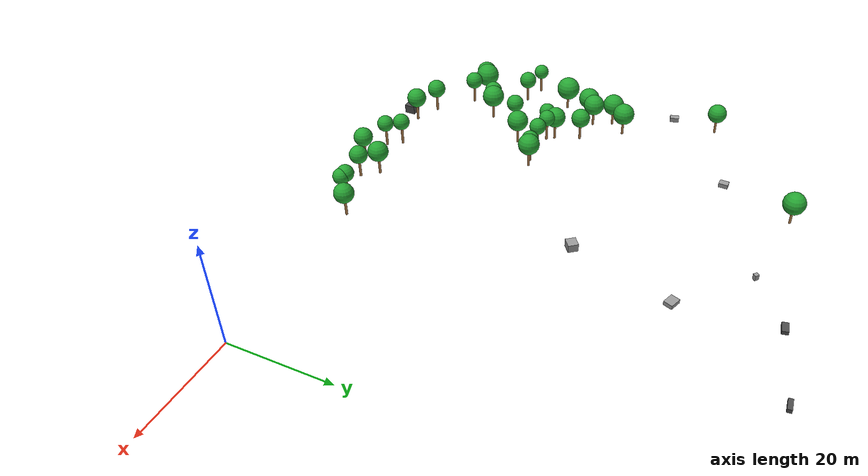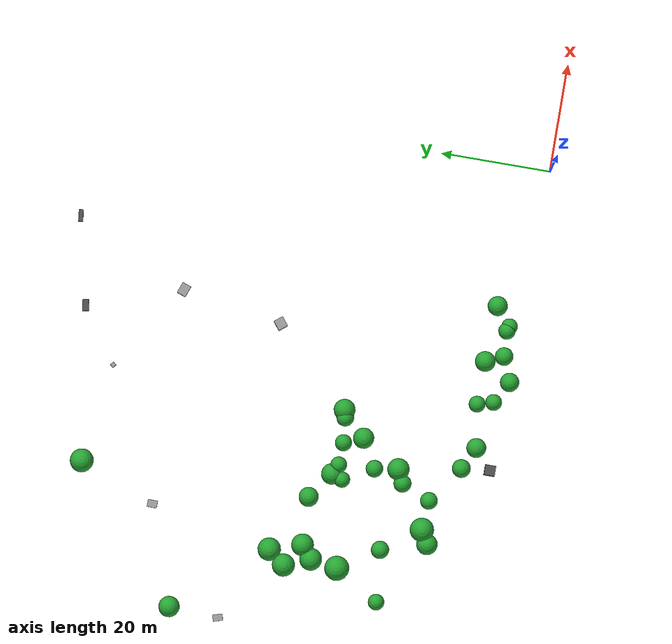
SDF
<sdf version="1.6">
 <world name="outdoor_v2">
  <include><uri>model://sun</uri></include>
  <model name="tree_0">
   <static>true</static>
   <pose>-63.44 11.86 11.67 0 0 4.497</pose>
   <link name="link">
    <collision name="trunk_c">
     <pose>0 0 1.5 0 0 0</pose>
     <geometry><cylinder><radius>0.22</radius><length>3.0</length></cylinder></geometry>
    </collision>
    <visual name="trunk_v">
     <pose>0 0 1.5 0 0 0</pose>
     <geometry><cylinder><radius>0.22</radius><length>3.0</length></cylinder></geometry>
     <material>
      <script><uri>file://media/materials/scripts/gazebo.material</uri><name>Gazebo/Wood</name></script>
     </material>
    </visual>
    <collision name="canopy_c">
     <pose>0 0 4.5 0 0 0</pose>
     <geometry><sphere><radius>1.52</radius></sphere></geometry>
    </collision>
    <visual name="canopy_v">
     <pose>0 0 4.5 0 0 0</pose>
     <geometry><sphere><radius>1.52</radius></sphere></geometry>
     <material>
      <script><uri>file://media/materials/scripts/gazebo.material</uri><name>Gazebo/Green</name></script>
     </material>
    </visual>
   </link>
  </model>
  <model name="tree_1">
   <static>true</static>
   <pose>-58.97 18.04 12.28 0 0 0.898</pose>
   <link name="link">
    <collision name="trunk_c">
     <pose>0 0 1.5 0 0 0</pose>
     <geometry><cylinder><radius>0.22</radius><length>3.0</length></cylinder></geometry>
    </collision>
    <visual name="trunk_v">
     <pose>0 0 1.5 0 0 0</pose>
     <geometry><cylinder><radius>0.22</radius><length>3.0</length></cylinder></geometry>
     <material>
      <script><uri>file://media/materials/scripts/gazebo.material</uri><name>Gazebo/Wood</name></script>
     </material>
    </visual>
    <collision name="canopy_c">
     <pose>0 0 4.5 0 0 0</pose>
     <geometry><sphere><radius>1.93</radius></sphere></geometry>
    </collision>
    <visual name="canopy_v">
     <pose>0 0 4.5 0 0 0</pose>
     <geometry><sphere><radius>1.93</radius></sphere></geometry>
     <material>
      <script><uri>file://media/materials/scripts/gazebo.material</uri><name>Gazebo/Green</name></script>
     </material>
    </visual>
   </link>
  </model>
  <model name="tree_2">
   <static>true</static>
   <pose>-68.59 12.17 10.27 0 0 6.076</pose>
   <link name="link">
    <collision name="trunk_c">
     <pose>0 0 1.5 0 0 0</pose>
     <geometry><cylinder><radius>0.22</radius><length>3.0</length></cylinder></geometry>
    </collision>
    <visual name="trunk_v">
     <pose>0 0 1.5 0 0 0</pose>
     <geometry><cylinder><radius>0.22</radius><length>3.0</length></cylinder></geometry>
     <material>
      <script><uri>file://media/materials/scripts/gazebo.material</uri><name>Gazebo/Wood</name></script>
     </material>
    </visual>
    <collision name="canopy_c">
     <pose>0 0 4.5 0 0 0</pose>
     <geometry><sphere><radius>2.11</radius></sphere></geometry>
    </collision>
    <visual name="canopy_v">
     <pose>0 0 4.5 0 0 0</pose>
     <geometry><sphere><radius>2.11</radius></sphere></geometry>
     <material>
      <script><uri>file://media/materials/scripts/gazebo.material</uri><name>Gazebo/Green</name></script>
     </material>
    </visual>
   </link>
  </model>
  <model name="tree_3">
   <static>true</static>
   <pose>-73.22 18.77 8.25 0 0 5.982</pose>
   <link name="link">
    <collision name="trunk_c">
     <pose>0 0 1.5 0 0 0</pose>
     <geometry><cylinder><radius>0.22</radius><length>3.0</length></cylinder></geometry>
    </collision>
    <visual name="trunk_v">
     <pose>0 0 1.5 0 0 0</pose>
     <geometry><cylinder><radius>0.22</radius><length>3.0</length></cylinder></geometry>
     <material>
      <script><uri>file://media/materials/scripts/gazebo.material</uri><name>Gazebo/Wood</name></script>
     </material>
    </visual>
    <collision name="canopy_c">
     <pose>0 0 4.5 0 0 0</pose>
     <geometry><sphere><radius>1.58</radius></sphere></geometry>
    </collision>
    <visual name="canopy_v">
     <pose>0 0 4.5 0 0 0</pose>
     <geometry><sphere><radius>1.58</radius></sphere></geometry>
     <material>
      <script><uri>file://media/materials/scripts/gazebo.material</uri><name>Gazebo/Green</name></script>
     </material>
    </visual>
   </link>
  </model>
  <model name="tree_4">
   <static>true</static>
   <pose>-52.91 5.26 11.94 0 0 3.060</pose>
   <link name="link">
    <collision name="trunk_c">
     <pose>0 0 1.5 0 0 0</pose>
     <geometry><cylinder><radius>0.22</radius><length>3.0</length></cylinder></geometry>
    </collision>
    <visual name="trunk_v">
     <pose>0 0 1.5 0 0 0</pose>
     <geometry><cylinder><radius>0.22</radius><length>3.0</length></cylinder></geometry>
     <material>
      <script><uri>file://media/materials/scripts/gazebo.material</uri><name>Gazebo/Wood</name></script>
     </material>
    </visual>
    <collision name="canopy_c">
     <pose>0 0 4.5 0 0 0</pose>
     <geometry><sphere><radius>1.72</radius></sphere></geometry>
    </collision>
    <visual name="canopy_v">
     <pose>0 0 4.5 0 0 0</pose>
     <geometry><sphere><radius>1.72</radius></sphere></geometry>
     <material>
      <script><uri>file://media/materials/scripts/gazebo.material</uri><name>Gazebo/Green</name></script>
     </material>
    </visual>
   </link>
  </model>
  <model name="tree_5">
   <static>true</static>
   <pose>-77.63 25.70 5.73 0 0 5.228</pose>
   <link name="link">
    <collision name="trunk_c">
     <pose>0 0 1.5 0 0 0</pose>
     <geometry><cylinder><radius>0.22</radius><length>3.0</length></cylinder></geometry>
    </collision>
    <visual name="trunk_v">
     <pose>0 0 1.5 0 0 0</pose>
     <geometry><cylinder><radius>0.22</radius><length>3.0</length></cylinder></geometry>
     <material>
      <script><uri>file://media/materials/scripts/gazebo.material</uri><name>Gazebo/Wood</name></script>
     </material>
    </visual>
    <collision name="canopy_c">
     <pose>0 0 4.5 0 0 0</pose>
     <geometry><sphere><radius>2.19</radius></sphere></geometry>
    </collision>
    <visual name="canopy_v">
     <pose>0 0 4.5 0 0 0</pose>
     <geometry><sphere><radius>2.19</radius></sphere></geometry>
     <material>
      <script><uri>file://media/materials/scripts/gazebo.material</uri><name>Gazebo/Green</name></script>
     </material>
    </visual>
   </link>
  </model>
  <model name="tree_6">
   <static>true</static>
   <pose>-51.52 28.76 10.35 0 0 2.710</pose>
   <link name="link">
    <collision name="trunk_c">
     <pose>0 0 1.5 0 0 0</pose>
     <geometry><cylinder><radius>0.22</radius><length>3.0</length></cylinder></geometry>
    </collision>
    <visual name="trunk_v">
     <pose>0 0 1.5 0 0 0</pose>
     <geometry><cylinder><radius>0.22</radius><length>3.0</length></cylinder></geometry>
     <material>
      <script><uri>file://media/materials/scripts/gazebo.material</uri><name>Gazebo/Wood</name></script>
     </material>
    </visual>
    <collision name="canopy_c">
     <pose>0 0 4.5 0 0 0</pose>
     <geometry><sphere><radius>1.53</radius></sphere></geometry>
    </collision>
    <visual name="canopy_v">
     <pose>0 0 4.5 0 0 0</pose>
     <geometry><sphere><radius>1.53</radius></sphere></geometry>
     <material>
      <script><uri>file://media/materials/scripts/gazebo.material</uri><name>Gazebo/Green</name></script>
     </material>
    </visual>
   </link>
  </model>
  <model name="tree_8">
   <static>true</static>
   <pose>-61.29 16.92 11.99 0 0 2.000</pose>
   <link name="link">
    <collision name="trunk_c">
     <pose>0 0 1.5 0 0 0</pose>
     <geometry><cylinder><radius>0.22</radius><length>3.0</length></cylinder></geometry>
    </collision>
    <visual name="trunk_v">
     <pose>0 0 1.5 0 0 0</pose>
     <geometry><cylinder><radius>0.22</radius><length>3.0</length></cylinder></geometry>
     <material>
      <script><uri>file://media/materials/scripts/gazebo.material</uri><name>Gazebo/Wood</name></script>
     </material>
    </visual>
    <collision name="canopy_c">
     <pose>0 0 4.5 0 0 0</pose>
     <geometry><sphere><radius>1.56</radius></sphere></geometry>
    </collision>
    <visual name="canopy_v">
     <pose>0 0 4.5 0 0 0</pose>
     <geometry><sphere><radius>1.56</radius></sphere></geometry>
     <material>
      <script><uri>file://media/materials/scripts/gazebo.material</uri><name>Gazebo/Green</name></script>
     </material>
    </visual>
   </link>
  </model>
  <model name="tree_9">
   <static>true</static>
   <pose>-74.59 32.35 5.31 0 0 0.122</pose>
   <link name="link">
    <collision name="trunk_c">
     <pose>0 0 1.5 0 0 0</pose>
     <geometry><cylinder><radius>0.22</radius><length>3.0</length></cylinder></geometry>
    </collision>
    <visual name="trunk_v">
     <pose>0 0 1.5 0 0 0</pose>
     <geometry><cylinder><radius>0.22</radius><length>3.0</length></cylinder></geometry>
     <material>
      <script><uri>file://media/materials/scripts/gazebo.material</uri><name>Gazebo/Wood</name></script>
     </material>
    </visual>
    <collision name="canopy_c">
     <pose>0 0 4.5 0 0 0</pose>
     <geometry><sphere><radius>1.98</radius></sphere></geometry>
    </collision>
    <visual name="canopy_v">
     <pose>0 0 4.5 0 0 0</pose>
     <geometry><sphere><radius>1.98</radius></sphere></geometry>
     <material>
      <script><uri>file://media/materials/scripts/gazebo.material</uri><name>Gazebo/Green</name></script>
     </material>
    </visual>
   </link>
  </model>
  <model name="tree_10">
   <static>true</static>
   <pose>-54.59 24.97 11.36 0 0 2.766</pose>
   <link name="link">
    <collision name="trunk_c">
     <pose>0 0 1.5 0 0 0</pose>
     <geometry><cylinder><radius>0.22</radius><length>3.0</length></cylinder></geometry>
    </collision>
    <visual name="trunk_v">
     <pose>0 0 1.5 0 0 0</pose>
     <geometry><cylinder><radius>0.22</radius><length>3.0</length></cylinder></geometry>
     <material>
      <script><uri>file://media/materials/scripts/gazebo.material</uri><name>Gazebo/Wood</name></script>
     </material>
    </visual>
    <collision name="canopy_c">
     <pose>0 0 4.5 0 0 0</pose>
     <geometry><sphere><radius>1.84</radius></sphere></geometry>
    </collision>
    <visual name="canopy_v">
     <pose>0 0 4.5 0 0 0</pose>
     <geometry><sphere><radius>1.84</radius></sphere></geometry>
     <material>
      <script><uri>file://media/materials/scripts/gazebo.material</uri><name>Gazebo/Green</name></script>
     </material>
    </visual>
   </link>
  </model>
  <model name="tree_11">
   <static>true</static>
   <pose>-62.30 27.46 9.66 0 0 2.082</pose>
   <link name="link">
    <collision name="trunk_c">
     <pose>0 0 1.5 0 0 0</pose>
     <geometry><cylinder><radius>0.22</radius><length>3.0</length></cylinder></geometry>
    </collision>
    <visual name="trunk_v">
     <pose>0 0 1.5 0 0 0</pose>
     <geometry><cylinder><radius>0.22</radius><length>3.0</length></cylinder></geometry>
     <material>
      <script><uri>file://media/materials/scripts/gazebo.material</uri><name>Gazebo/Wood</name></script>
     </material>
    </visual>
    <collision name="canopy_c">
     <pose>0 0 4.5 0 0 0</pose>
     <geometry><sphere><radius>1.41</radius></sphere></geometry>
    </collision>
    <visual name="canopy_v">
     <pose>0 0 4.5 0 0 0</pose>
     <geometry><sphere><radius>1.41</radius></sphere></geometry>
     <material>
      <script><uri>file://media/materials/scripts/gazebo.material</uri><name>Gazebo/Green</name></script>
     </material>
    </visual>
   </link>
  </model>
  <model name="tree_12">
   <static>true</static>
   <pose>-50.16 29.12 10.23 0 0 3.217</pose>
   <link name="link">
    <collision name="trunk_c">
     <pose>0 0 1.5 0 0 0</pose>
     <geometry><cylinder><radius>0.22</radius><length>3.0</length></cylinder></geometry>
    </collision>
    <visual name="trunk_v">
     <pose>0 0 1.5 0 0 0</pose>
     <geometry><cylinder><radius>0.22</radius><length>3.0</length></cylinder></geometry>
     <material>
      <script><uri>file://media/materials/scripts/gazebo.material</uri><name>Gazebo/Wood</name></script>
     </material>
    </visual>
    <collision name="canopy_c">
     <pose>0 0 4.5 0 0 0</pose>
     <geometry><sphere><radius>1.90</radius></sphere></geometry>
    </collision>
    <visual name="canopy_v">
     <pose>0 0 4.5 0 0 0</pose>
     <geometry><sphere><radius>1.90</radius></sphere></geometry>
     <material>
      <script><uri>file://media/materials/scripts/gazebo.material</uri><name>Gazebo/Green</name></script>
     </material>
    </visual>
   </link>
  </model>
  <model name="tree_13">
   <static>true</static>
   <pose>-59.84 28.48 9.79 0 0 6.186</pose>
   <link name="link">
    <collision name="trunk_c">
     <pose>0 0 1.5 0 0 0</pose>
     <geometry><cylinder><radius>0.22</radius><length>3.0</length></cylinder></geometry>
    </collision>
    <visual name="trunk_v">
     <pose>0 0 1.5 0 0 0</pose>
     <geometry><cylinder><radius>0.22</radius><length>3.0</length></cylinder></geometry>
     <material>
      <script><uri>file://media/materials/scripts/gazebo.material</uri><name>Gazebo/Wood</name></script>
     </material>
    </visual>
    <collision name="canopy_c">
     <pose>0 0 4.5 0 0 0</pose>
     <geometry><sphere><radius>1.45</radius></sphere></geometry>
    </collision>
    <visual name="canopy_v">
     <pose>0 0 4.5 0 0 0</pose>
     <geometry><sphere><radius>1.45</radius></sphere></geometry>
     <material>
      <script><uri>file://media/materials/scripts/gazebo.material</uri><name>Gazebo/Green</name></script>
     </material>
    </visual>
   </link>
  </model>
  <model name="tree_14">
   <static>true</static>
   <pose>-78.63 35.09 3.80 0 0 6.102</pose>
   <link name="link">
    <collision name="trunk_c">
     <pose>0 0 1.5 0 0 0</pose>
     <geometry><cylinder><radius>0.22</radius><length>3.0</length></cylinder></geometry>
    </collision>
    <visual name="trunk_v">
     <pose>0 0 1.5 0 0 0</pose>
     <geometry><cylinder><radius>0.22</radius><length>3.0</length></cylinder></geometry>
     <material>
      <script><uri>file://media/materials/scripts/gazebo.material</uri><name>Gazebo/Wood</name></script>
     </material>
    </visual>
    <collision name="canopy_c">
     <pose>0 0 4.5 0 0 0</pose>
     <geometry><sphere><radius>2.03</radius></sphere></geometry>
    </collision>
    <visual name="canopy_v">
     <pose>0 0 4.5 0 0 0</pose>
     <geometry><sphere><radius>2.03</radius></sphere></geometry>
     <material>
      <script><uri>file://media/materials/scripts/gazebo.material</uri><name>Gazebo/Green</name></script>
     </material>
    </visual>
   </link>
  </model>
  <model name="tree_15">
   <static>true</static>
   <pose>-55.92 28.32 10.30 0 0 1.668</pose>
   <link name="link">
    <collision name="trunk_c">
     <pose>0 0 1.5 0 0 0</pose>
     <geometry><cylinder><radius>0.22</radius><length>3.0</length></cylinder></geometry>
    </collision>
    <visual name="trunk_v">
     <pose>0 0 1.5 0 0 0</pose>
     <geometry><cylinder><radius>0.22</radius><length>3.0</length></cylinder></geometry>
     <material>
      <script><uri>file://media/materials/scripts/gazebo.material</uri><name>Gazebo/Wood</name></script>
     </material>
    </visual>
    <collision name="canopy_c">
     <pose>0 0 4.5 0 0 0</pose>
     <geometry><sphere><radius>1.48</radius></sphere></geometry>
    </collision>
    <visual name="canopy_v">
     <pose>0 0 4.5 0 0 0</pose>
     <geometry><sphere><radius>1.48</radius></sphere></geometry>
     <material>
      <script><uri>file://media/materials/scripts/gazebo.material</uri><name>Gazebo/Green</name></script>
     </material>
    </visual>
   </link>
  </model>
  <model name="tree_16">
   <static>true</static>
   <pose>-82.28 17.85 5.20 0 0 4.892</pose>
   <link name="link">
    <collision name="trunk_c">
     <pose>0 0 1.5 0 0 0</pose>
     <geometry><cylinder><radius>0.22</radius><length>3.0</length></cylinder></geometry>
    </collision>
    <visual name="trunk_v">
     <pose>0 0 1.5 0 0 0</pose>
     <geometry><cylinder><radius>0.22</radius><length>3.0</length></cylinder></geometry>
     <material>
      <script><uri>file://media/materials/scripts/gazebo.material</uri><name>Gazebo/Wood</name></script>
     </material>
    </visual>
    <collision name="canopy_c">
     <pose>0 0 4.5 0 0 0</pose>
     <geometry><sphere><radius>1.43</radius></sphere></geometry>
    </collision>
    <visual name="canopy_v">
     <pose>0 0 4.5 0 0 0</pose>
     <geometry><sphere><radius>1.43</radius></sphere></geometry>
     <material>
      <script><uri>file://media/materials/scripts/gazebo.material</uri><name>Gazebo/Green</name></script>
     </material>
    </visual>
   </link>
  </model>
  <model name="tree_17">
   <static>true</static>
   <pose>-56.93 7.25 12.20 0 0 0.814</pose>
   <link name="link">
    <collision name="trunk_c">
     <pose>0 0 1.5 0 0 0</pose>
     <geometry><cylinder><radius>0.22</radius><length>3.0</length></cylinder></geometry>
    </collision>
    <visual name="trunk_v">
     <pose>0 0 1.5 0 0 0</pose>
     <geometry><cylinder><radius>0.22</radius><length>3.0</length></cylinder></geometry>
     <material>
      <script><uri>file://media/materials/scripts/gazebo.material</uri><name>Gazebo/Wood</name></script>
     </material>
    </visual>
    <collision name="canopy_c">
     <pose>0 0 4.5 0 0 0</pose>
     <geometry><sphere><radius>1.62</radius></sphere></geometry>
    </collision>
    <visual name="canopy_v">
     <pose>0 0 4.5 0 0 0</pose>
     <geometry><sphere><radius>1.62</radius></sphere></geometry>
     <material>
      <script><uri>file://media/materials/scripts/gazebo.material</uri><name>Gazebo/Green</name></script>
     </material>
    </visual>
   </link>
  </model>
  <model name="tree_18">
   <static>true</static>
   <pose>-66.17 32.73 7.25 0 0 5.724</pose>
   <link name="link">
    <collision name="trunk_c">
     <pose>0 0 1.5 0 0 0</pose>
     <geometry><cylinder><radius>0.22</radius><length>3.0</length></cylinder></geometry>
    </collision>
    <visual name="trunk_v">
     <pose>0 0 1.5 0 0 0</pose>
     <geometry><cylinder><radius>0.22</radius><length>3.0</length></cylinder></geometry>
     <material>
      <script><uri>file://media/materials/scripts/gazebo.material</uri><name>Gazebo/Wood</name></script>
     </material>
    </visual>
    <collision name="canopy_c">
     <pose>0 0 4.5 0 0 0</pose>
     <geometry><sphere><radius>1.74</radius></sphere></geometry>
    </collision>
    <visual name="canopy_v">
     <pose>0 0 4.5 0 0 0</pose>
     <geometry><sphere><radius>1.74</radius></sphere></geometry>
     <material>
      <script><uri>file://media/materials/scripts/gazebo.material</uri><name>Gazebo/Green</name></script>
     </material>
    </visual>
   </link>
  </model>
  <model name="tree_19">
   <static>true</static>
   <pose>-76.31 38.04 3.72 0 0 1.624</pose>
   <link name="link">
    <collision name="trunk_c">
     <pose>0 0 1.5 0 0 0</pose>
     <geometry><cylinder><radius>0.22</radius><length>3.0</length></cylinder></geometry>
    </collision>
    <visual name="trunk_v">
     <pose>0 0 1.5 0 0 0</pose>
     <geometry><cylinder><radius>0.22</radius><length>3.0</length></cylinder></geometry>
     <material>
      <script><uri>file://media/materials/scripts/gazebo.material</uri><name>Gazebo/Wood</name></script>
     </material>
    </visual>
    <collision name="canopy_c">
     <pose>0 0 4.5 0 0 0</pose>
     <geometry><sphere><radius>2.06</radius></sphere></geometry>
    </collision>
    <visual name="canopy_v">
     <pose>0 0 4.5 0 0 0</pose>
     <geometry><sphere><radius>2.06</radius></sphere></geometry>
     <material>
      <script><uri>file://media/materials/scripts/gazebo.material</uri><name>Gazebo/Green</name></script>
     </material>
    </visual>
   </link>
  </model>
  <model name="tree_20">
   <static>true</static>
   <pose>-59.54 22.20 11.51 0 0 5.772</pose>
   <link name="link">
    <collision name="trunk_c">
     <pose>0 0 1.5 0 0 0</pose>
     <geometry><cylinder><radius>0.22</radius><length>3.0</length></cylinder></geometry>
    </collision>
    <visual name="trunk_v">
     <pose>0 0 1.5 0 0 0</pose>
     <geometry><cylinder><radius>0.22</radius><length>3.0</length></cylinder></geometry>
     <material>
      <script><uri>file://media/materials/scripts/gazebo.material</uri><name>Gazebo/Wood</name></script>
     </material>
    </visual>
    <collision name="canopy_c">
     <pose>0 0 4.5 0 0 0</pose>
     <geometry><sphere><radius>1.52</radius></sphere></geometry>
    </collision>
    <visual name="canopy_v">
     <pose>0 0 4.5 0 0 0</pose>
     <geometry><sphere><radius>1.52</radius></sphere></geometry>
     <material>
      <script><uri>file://media/materials/scripts/gazebo.material</uri><name>Gazebo/Green</name></script>
     </material>
    </visual>
   </link>
  </model>
  <model name="tree_21">
   <static>true</static>
   <pose>-61.59 29.40 9.21 0 0 4.399</pose>
   <link name="link">
    <collision name="trunk_c">
     <pose>0 0 1.5 0 0 0</pose>
     <geometry><cylinder><radius>0.22</radius><length>3.0</length></cylinder></geometry>
    </collision>
    <visual name="trunk_v">
     <pose>0 0 1.5 0 0 0</pose>
     <geometry><cylinder><radius>0.22</radius><length>3.0</length></cylinder></geometry>
     <material>
      <script><uri>file://media/materials/scripts/gazebo.material</uri><name>Gazebo/Wood</name></script>
     </material>
    </visual>
    <collision name="canopy_c">
     <pose>0 0 4.5 0 0 0</pose>
     <geometry><sphere><radius>1.86</radius></sphere></geometry>
    </collision>
    <visual name="canopy_v">
     <pose>0 0 4.5 0 0 0</pose>
     <geometry><sphere><radius>1.86</radius></sphere></geometry>
     <material>
      <script><uri>file://media/materials/scripts/gazebo.material</uri><name>Gazebo/Green</name></script>
     </material>
    </visual>
   </link>
  </model>
  <model name="tree_24">
   <static>true</static>
   <pose>-45.26 6.41 11.49 0 0 5.893</pose>
   <link name="link">
    <collision name="trunk_c">
     <pose>0 0 1.5 0 0 0</pose>
     <geometry><cylinder><radius>0.22</radius><length>3.0</length></cylinder></geometry>
    </collision>
    <visual name="trunk_v">
     <pose>0 0 1.5 0 0 0</pose>
     <geometry><cylinder><radius>0.22</radius><length>3.0</length></cylinder></geometry>
     <material>
      <script><uri>file://media/materials/scripts/gazebo.material</uri><name>Gazebo/Wood</name></script>
     </material>
    </visual>
    <collision name="canopy_c">
     <pose>0 0 4.5 0 0 0</pose>
     <geometry><sphere><radius>1.46</radius></sphere></geometry>
    </collision>
    <visual name="canopy_v">
     <pose>0 0 4.5 0 0 0</pose>
     <geometry><sphere><radius>1.46</radius></sphere></geometry>
     <material>
      <script><uri>file://media/materials/scripts/gazebo.material</uri><name>Gazebo/Green</name></script>
     </material>
    </visual>
   </link>
  </model>
  <model name="tree_27">
   <static>true</static>
   <pose>-44.42 3.58 10.86 0 0 5.418</pose>
   <link name="link">
    <collision name="trunk_c">
     <pose>0 0 1.5 0 0 0</pose>
     <geometry><cylinder><radius>0.22</radius><length>3.0</length></cylinder></geometry>
    </collision>
    <visual name="trunk_v">
     <pose>0 0 1.5 0 0 0</pose>
     <geometry><cylinder><radius>0.22</radius><length>3.0</length></cylinder></geometry>
     <material>
      <script><uri>file://media/materials/scripts/gazebo.material</uri><name>Gazebo/Wood</name></script>
     </material>
    </visual>
    <collision name="canopy_c">
     <pose>0 0 4.5 0 0 0</pose>
     <geometry><sphere><radius>1.45</radius></sphere></geometry>
    </collision>
    <visual name="canopy_v">
     <pose>0 0 4.5 0 0 0</pose>
     <geometry><sphere><radius>1.45</radius></sphere></geometry>
     <material>
      <script><uri>file://media/materials/scripts/gazebo.material</uri><name>Gazebo/Green</name></script>
     </material>
    </visual>
   </link>
  </model>
  <model name="tree_28">
   <static>true</static>
   <pose>-27.17 5.63 7.85 0 0 2.130</pose>
   <link name="link">
    <collision name="trunk_c">
     <pose>0 0 1.5 0 0 0</pose>
     <geometry><cylinder><radius>0.22</radius><length>3.0</length></cylinder></geometry>
    </collision>
    <visual name="trunk_v">
     <pose>0 0 1.5 0 0 0</pose>
     <geometry><cylinder><radius>0.22</radius><length>3.0</length></cylinder></geometry>
     <material>
      <script><uri>file://media/materials/scripts/gazebo.material</uri><name>Gazebo/Wood</name></script>
     </material>
    </visual>
    <collision name="canopy_c">
     <pose>0 0 4.5 0 0 0</pose>
     <geometry><sphere><radius>1.76</radius></sphere></geometry>
    </collision>
    <visual name="canopy_v">
     <pose>0 0 4.5 0 0 0</pose>
     <geometry><sphere><radius>1.76</radius></sphere></geometry>
     <material>
      <script><uri>file://media/materials/scripts/gazebo.material</uri><name>Gazebo/Green</name></script>
     </material>
    </visual>
   </link>
  </model>
  <model name="tree_30">
   <static>true</static>
   <pose>-35.96 3.07 9.32 0 0 0.812</pose>
   <link name="link">
    <collision name="trunk_c">
     <pose>0 0 1.5 0 0 0</pose>
     <geometry><cylinder><radius>0.22</radius><length>3.0</length></cylinder></geometry>
    </collision>
    <visual name="trunk_v">
     <pose>0 0 1.5 0 0 0</pose>
     <geometry><cylinder><radius>0.22</radius><length>3.0</length></cylinder></geometry>
     <material>
      <script><uri>file://media/materials/scripts/gazebo.material</uri><name>Gazebo/Wood</name></script>
     </material>
    </visual>
    <collision name="canopy_c">
     <pose>0 0 4.5 0 0 0</pose>
     <geometry><sphere><radius>1.61</radius></sphere></geometry>
    </collision>
    <visual name="canopy_v">
     <pose>0 0 4.5 0 0 0</pose>
     <geometry><sphere><radius>1.61</radius></sphere></geometry>
     <material>
      <script><uri>file://media/materials/scripts/gazebo.material</uri><name>Gazebo/Green</name></script>
     </material>
    </visual>
   </link>
  </model>
  <model name="tree_33">
   <static>true</static>
   <pose>-30.46 2.99 8.32 0 0 1.267</pose>
   <link name="link">
    <collision name="trunk_c">
     <pose>0 0 1.5 0 0 0</pose>
     <geometry><cylinder><radius>0.22</radius><length>3.0</length></cylinder></geometry>
    </collision>
    <visual name="trunk_v">
     <pose>0 0 1.5 0 0 0</pose>
     <geometry><cylinder><radius>0.22</radius><length>3.0</length></cylinder></geometry>
     <material>
      <script><uri>file://media/materials/scripts/gazebo.material</uri><name>Gazebo/Wood</name></script>
     </material>
    </visual>
    <collision name="canopy_c">
     <pose>0 0 4.5 0 0 0</pose>
     <geometry><sphere><radius>1.44</radius></sphere></geometry>
    </collision>
    <visual name="canopy_v">
     <pose>0 0 4.5 0 0 0</pose>
     <geometry><sphere><radius>1.44</radius></sphere></geometry>
     <material>
      <script><uri>file://media/materials/scripts/gazebo.material</uri><name>Gazebo/Green</name></script>
     </material>
    </visual>
   </link>
  </model>
  <model name="tree_36">
   <static>true</static>
   <pose>-37.45 6.21 9.98 0 0 1.117</pose>
   <link name="link">
    <collision name="trunk_c">
     <pose>0 0 1.5 0 0 0</pose>
     <geometry><cylinder><radius>0.22</radius><length>3.0</length></cylinder></geometry>
    </collision>
    <visual name="trunk_v">
     <pose>0 0 1.5 0 0 0</pose>
     <geometry><cylinder><radius>0.22</radius><length>3.0</length></cylinder></geometry>
     <material>
      <script><uri>file://media/materials/scripts/gazebo.material</uri><name>Gazebo/Wood</name></script>
     </material>
    </visual>
    <collision name="canopy_c">
     <pose>0 0 4.5 0 0 0</pose>
     <geometry><sphere><radius>1.80</radius></sphere></geometry>
    </collision>
    <visual name="canopy_v">
     <pose>0 0 4.5 0 0 0</pose>
     <geometry><sphere><radius>1.80</radius></sphere></geometry>
     <material>
      <script><uri>file://media/materials/scripts/gazebo.material</uri><name>Gazebo/Green</name></script>
     </material>
    </visual>
   </link>
  </model>
  <model name="tree_37">
   <static>true</static>
   <pose>-40.36 1.37 9.83 0 0 0.114</pose>
   <link name="link">
    <collision name="trunk_c">
     <pose>0 0 1.5 0 0 0</pose>
     <geometry><cylinder><radius>0.22</radius><length>3.0</length></cylinder></geometry>
    </collision>
    <visual name="trunk_v">
     <pose>0 0 1.5 0 0 0</pose>
     <geometry><cylinder><radius>0.22</radius><length>3.0</length></cylinder></geometry>
     <material>
      <script><uri>file://media/materials/scripts/gazebo.material</uri><name>Gazebo/Wood</name></script>
     </material>
    </visual>
    <collision name="canopy_c">
     <pose>0 0 4.5 0 0 0</pose>
     <geometry><sphere><radius>1.68</radius></sphere></geometry>
    </collision>
    <visual name="canopy_v">
     <pose>0 0 4.5 0 0 0</pose>
     <geometry><sphere><radius>1.68</radius></sphere></geometry>
     <material>
      <script><uri>file://media/materials/scripts/gazebo.material</uri><name>Gazebo/Green</name></script>
     </material>
    </visual>
   </link>
  </model>
  <model name="tree_75">
   <static>true</static>
   <pose>-66.41 73.80 0.39 0 0 3.940</pose>
   <link name="link">
    <collision name="trunk_c">
     <pose>0 0 1.5 0 0 0</pose>
     <geometry><cylinder><radius>0.22</radius><length>3.0</length></cylinder></geometry>
    </collision>
    <visual name="trunk_v">
     <pose>0 0 1.5 0 0 0</pose>
     <geometry><cylinder><radius>0.22</radius><length>3.0</length></cylinder></geometry>
     <material>
      <script><uri>file://media/materials/scripts/gazebo.material</uri><name>Gazebo/Wood</name></script>
     </material>
    </visual>
    <collision name="canopy_c">
     <pose>0 0 4.5 0 0 0</pose>
     <geometry><sphere><radius>2.11</radius></sphere></geometry>
    </collision>
    <visual name="canopy_v">
     <pose>0 0 4.5 0 0 0</pose>
     <geometry><sphere><radius>2.11</radius></sphere></geometry>
     <material>
      <script><uri>file://media/materials/scripts/gazebo.material</uri><name>Gazebo/Green</name></script>
     </material>
    </visual>
   </link>
  </model>
  <model name="tree_80">
   <static>true</static>
   <pose>-89.29 53.85 0.60 0 0 5.607</pose>
   <link name="link">
    <collision name="trunk_c">
     <pose>0 0 1.5 0 0 0</pose>
     <geometry><cylinder><radius>0.22</radius><length>3.0</length></cylinder></geometry>
    </collision>
    <visual name="trunk_v">
     <pose>0 0 1.5 0 0 0</pose>
     <geometry><cylinder><radius>0.22</radius><length>3.0</length></cylinder></geometry>
     <material>
      <script><uri>file://media/materials/scripts/gazebo.material</uri><name>Gazebo/Wood</name></script>
     </material>
    </visual>
    <collision name="canopy_c">
     <pose>0 0 4.5 0 0 0</pose>
     <geometry><sphere><radius>1.87</radius></sphere></geometry>
    </collision>
    <visual name="canopy_v">
     <pose>0 0 4.5 0 0 0</pose>
     <geometry><sphere><radius>1.87</radius></sphere></geometry>
     <material>
      <script><uri>file://media/materials/scripts/gazebo.material</uri><name>Gazebo/Green</name></script>
     </material>
    </visual>
   </link>
  </model>
  <model name="tree_83">
   <static>true</static>
   <pose>-31.32 3.30 8.49 0 0 2.265</pose>
   <link name="link">
    <collision name="trunk_c">
     <pose>0 0 1.5 0 0 0</pose>
     <geometry><cylinder><radius>0.22</radius><length>3.0</length></cylinder></geometry>
    </collision>
    <visual name="trunk_v">
     <pose>0 0 1.5 0 0 0</pose>
     <geometry><cylinder><radius>0.22</radius><length>3.0</length></cylinder></geometry>
     <material>
      <script><uri>file://media/materials/scripts/gazebo.material</uri><name>Gazebo/Wood</name></script>
     </material>
    </visual>
    <collision name="canopy_c">
     <pose>0 0 4.5 0 0 0</pose>
     <geometry><sphere><radius>1.51</radius></sphere></geometry>
    </collision>
    <visual name="canopy_v">
     <pose>0 0 4.5 0 0 0</pose>
     <geometry><sphere><radius>1.51</radius></sphere></geometry>
     <material>
      <script><uri>file://media/materials/scripts/gazebo.material</uri><name>Gazebo/Green</name></script>
     </material>
    </visual>
   </link>
  </model>
  <model name="tree_85">
   <static>true</static>
   <pose>-70.90 10.85 9.53 0 0 3.942</pose>
   <link name="link">
    <collision name="trunk_c">
     <pose>0 0 1.5 0 0 0</pose>
     <geometry><cylinder><radius>0.22</radius><length>3.0</length></cylinder></geometry>
    </collision>
    <visual name="trunk_v">
     <pose>0 0 1.5 0 0 0</pose>
     <geometry><cylinder><radius>0.22</radius><length>3.0</length></cylinder></geometry>
     <material>
      <script><uri>file://media/materials/scripts/gazebo.material</uri><name>Gazebo/Wood</name></script>
     </material>
    </visual>
    <collision name="canopy_c">
     <pose>0 0 4.5 0 0 0</pose>
     <geometry><sphere><radius>1.85</radius></sphere></geometry>
    </collision>
    <visual name="canopy_v">
     <pose>0 0 4.5 0 0 0</pose>
     <geometry><sphere><radius>1.85</radius></sphere></geometry>
     <material>
      <script><uri>file://media/materials/scripts/gazebo.material</uri><name>Gazebo/Green</name></script>
     </material>
    </visual>
   </link>
  </model>
  <model name="tree_100">
   <static>true</static>
   <pose>-76.84 30.50 5.10 0 0 1.912</pose>
   <link name="link">
    <collision name="trunk_c">
     <pose>0 0 1.5 0 0 0</pose>
     <geometry><cylinder><radius>0.22</radius><length>3.0</length></cylinder></geometry>
    </collision>
    <visual name="trunk_v">
     <pose>0 0 1.5 0 0 0</pose>
     <geometry><cylinder><radius>0.22</radius><length>3.0</length></cylinder></geometry>
     <material>
      <script><uri>file://media/materials/scripts/gazebo.material</uri><name>Gazebo/Wood</name></script>
     </material>
    </visual>
    <collision name="canopy_c">
     <pose>0 0 4.5 0 0 0</pose>
     <geometry><sphere><radius>1.99</radius></sphere></geometry>
    </collision>
    <visual name="canopy_v">
     <pose>0 0 4.5 0 0 0</pose>
     <geometry><sphere><radius>1.99</radius></sphere></geometry>
     <material>
      <script><uri>file://media/materials/scripts/gazebo.material</uri><name>Gazebo/Green</name></script>
     </material>
    </visual>
   </link>
  </model>
  <model name="rock_8">
   <static>true</static>
   <pose>-56.09 2.09 11.74 0 0 0.001</pose>
   <link name="link">
    <collision name="rock_c"><geometry><box><size>1.82 1.89 1.57</size></box></geometry></collision>
    <visual name="rock_v">
     <geometry><box><size>1.82 1.89 1.57</size></box></geometry>
     <material>
      <script><uri>file://media/materials/scripts/gazebo.material</uri><name>Gazebo/DarkGrey</name></script>
     </material>
    </visual>
   </link>
  </model>
  <model name="rock_14">
   <static>true</static>
   <pose>-48.35 71.59 1.51 0 0 2.437</pose>
   <link name="link">
    <collision name="rock_c"><geometry><box><size>0.78 0.71 1.08</size></box></geometry></collision>
    <visual name="rock_v">
     <geometry><box><size>0.78 0.71 1.08</size></box></geometry>
     <material>
      <script><uri>file://media/materials/scripts/gazebo.material</uri><name>Gazebo/Grey</name></script>
     </material>
    </visual>
   </link>
  </model>
  <model name="rock_19">
   <static>true</static>
   <pose>-33.11 61.24 4.91 0 0 4.370</pose>
   <link name="link">
    <collision name="rock_c"><geometry><box><size>1.67 2.08 0.75</size></box></geometry></collision>
    <visual name="rock_v">
     <geometry><box><size>1.67 2.08 0.75</size></box></geometry>
     <material>
      <script><uri>file://media/materials/scripts/gazebo.material</uri><name>Gazebo/Grey</name></script>
     </material>
    </visual>
   </link>
  </model>
  <model name="rock_20">
   <static>true</static>
   <pose>-89.69 45.13 1.31 0 0 5.006</pose>
   <link name="link">
    <collision name="rock_c"><geometry><box><size>1.75 1.18 0.94</size></box></geometry></collision>
    <visual name="rock_v">
     <geometry><box><size>1.75 1.18 0.94</size></box></geometry>
     <material>
      <script><uri>file://media/materials/scripts/gazebo.material</uri><name>Gazebo/Grey</name></script>
     </material>
    </visual>
   </link>
  </model>
  <model name="rock_26">
   <static>true</static>
   <pose>-71.69 60.24 1.22 0 0 6.264</pose>
   <link name="link">
    <collision name="rock_c"><geometry><box><size>1.32 1.74 0.85</size></box></geometry></collision>
    <visual name="rock_v">
     <geometry><box><size>1.32 1.74 0.85</size></box></geometry>
     <material>
      <script><uri>file://media/materials/scripts/gazebo.material</uri><name>Gazebo/Grey</name></script>
     </material>
    </visual>
   </link>
  </model>
  <model name="rock_27">
   <static>true</static>
   <pose>-38.59 78.41 1.42 0 0 0.200</pose>
   <link name="link">
    <collision name="rock_c"><geometry><box><size>2.09 1.13 0.70</size></box></geometry></collision>
    <visual name="rock_v">
     <geometry><box><size>2.09 1.13 0.70</size></box></geometry>
     <material>
      <script><uri>file://media/materials/scripts/gazebo.material</uri><name>Gazebo/DarkGrey</name></script>
     </material>
    </visual>
   </link>
  </model>
  <model name="rock_30">
   <static>true</static>
   <pose>-22.80 82.11 2.31 0 0 4.828</pose>
   <link name="link">
    <collision name="rock_c"><geometry><box><size>0.80 2.14 0.73</size></box></geometry></collision>
    <visual name="rock_v">
     <geometry><box><size>0.80 2.14 0.73</size></box></geometry>
     <material>
      <script><uri>file://media/materials/scripts/gazebo.material</uri><name>Gazebo/DarkGrey</name></script>
     </material>
    </visual>
   </link>
  </model>
  <model name="rock_40">
   <static>true</static>
   <pose>-36.40 43.03 7.40 0 0 3.814</pose>
   <link name="link">
    <collision name="rock_c"><geometry><box><size>1.88 1.78 1.41</size></box></geometry></collision>
    <visual name="rock_v">
     <geometry><box><size>1.88 1.78 1.41</size></box></geometry>
     <material>
      <script><uri>file://media/materials/scripts/gazebo.material</uri><name>Gazebo/Grey</name></script>
     </material>
    </visual>
   </link>
  </model>
 </world>
</sdf>
